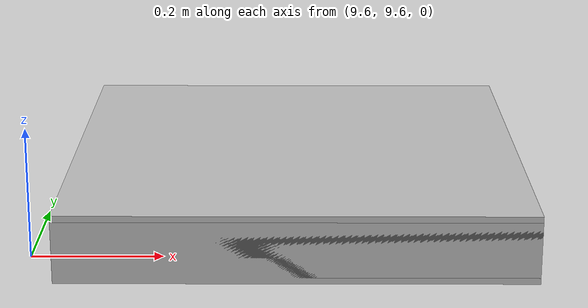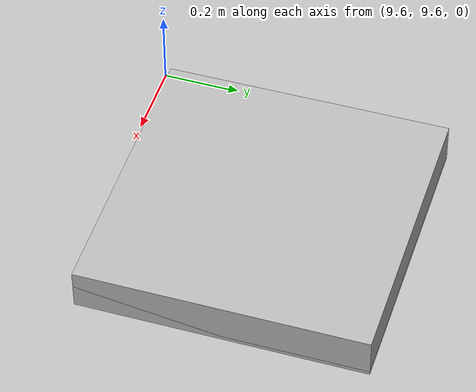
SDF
<?xml version="1.0"?>
<sdf version="1.6">
  <model name="aruco_6x6_1">
    <static>true</static>
    <link name="link">
      <inertial>
        <pose>10 10 0.5 0 1.570796 0</pose>
        <mass>0.001</mass>
        <inertia>
          <ixx>3.7499999999999997e-06</ixx>
          <ixy>0.0</ixy>
          <ixz>0.0</ixz>
          <iyy>1.8750008333333333e-06</iyy>
          <iyz>0.0</iyz>
          <izz>1.8750008333333333e-06</izz>
        </inertia>
      </inertial>
      <visual name="front_visual">
        <pose>10 10 0.005 0 1.570796 0</pose>
        <geometry>
          <box>
            <size>0.1 0.75 0.75</size>
          </box>
        </geometry>
        <material>
          <script>
            <uri>model://aruco_6x6_1/materials/scripts</uri>
            <uri>model://aruco_6x6_1/materials/textures</uri>
            <name>marker1</name>
          </script>
        </material>
      </visual>
      <!-- Hide the marker from the back -->
      <visual name="rear_visual">
        <pose>10 10 -0.005 0 1.570796 0</pose>
        <geometry>
          <box>
            <size>0.1 0.75 0.75</size>
          </box>
        </geometry>
      </visual>
      <collision name="collision">
        <pose>10 10 0 0 1.570796 0</pose>
        <geometry>
          <box>
            <size>0.001 0.75 0.75</size>
          </box>
        </geometry>
      </collision>
    </link>
  </model>
</sdf>
